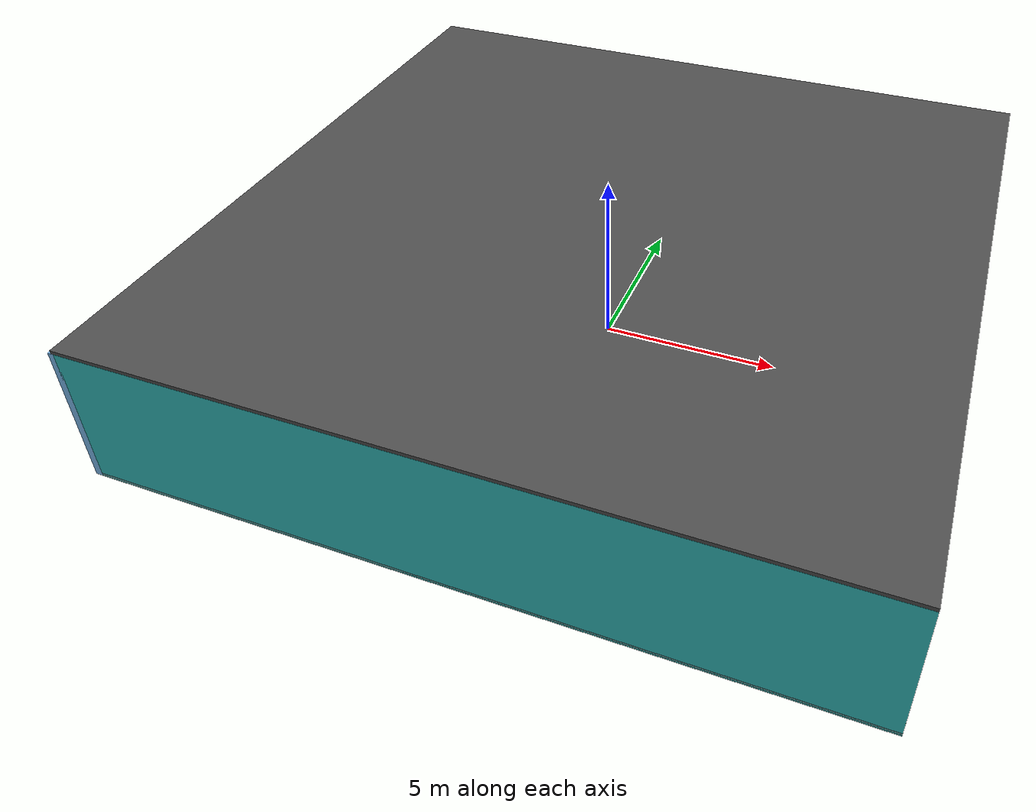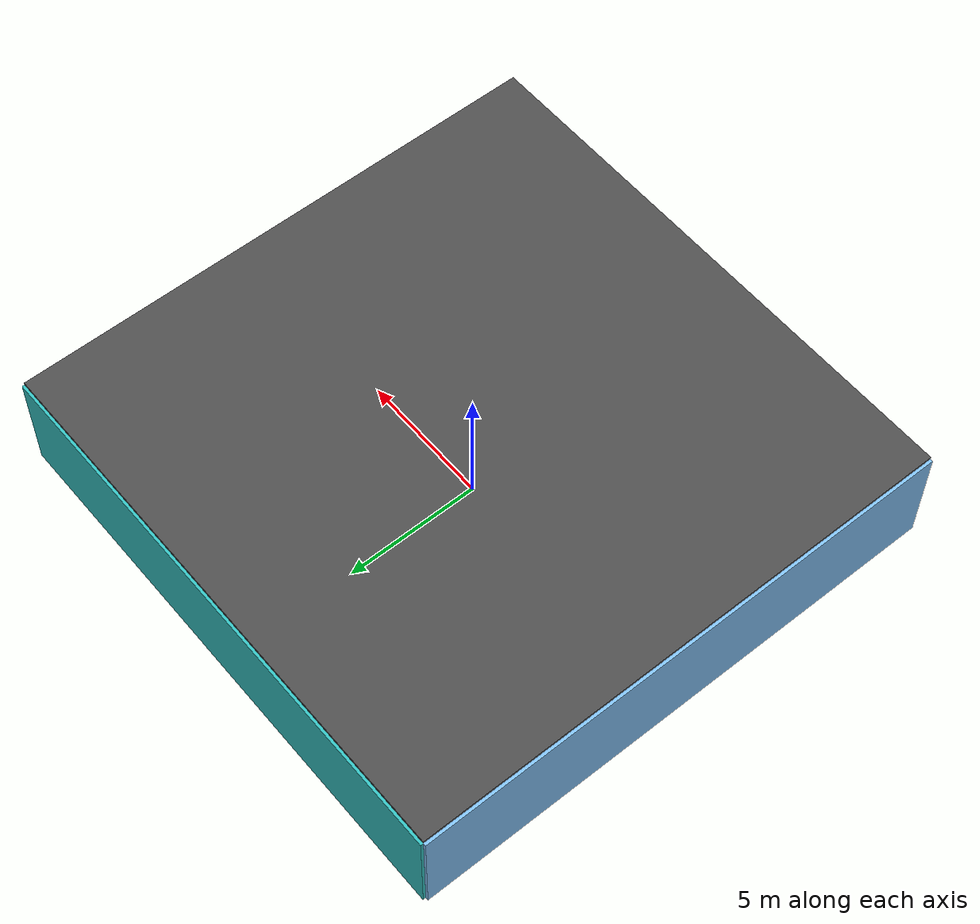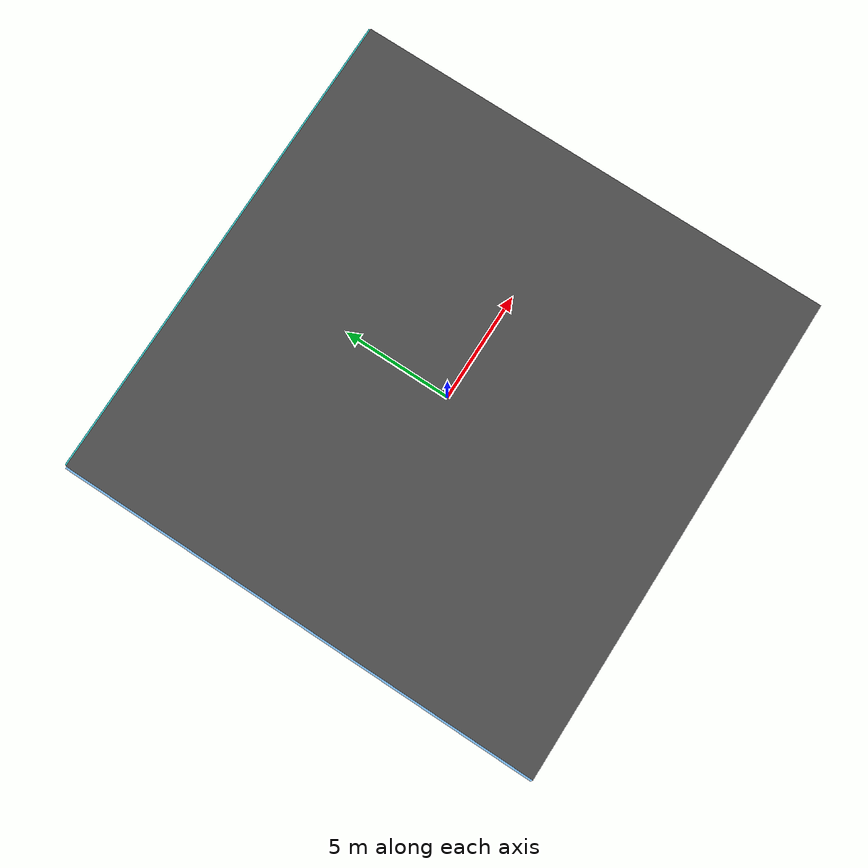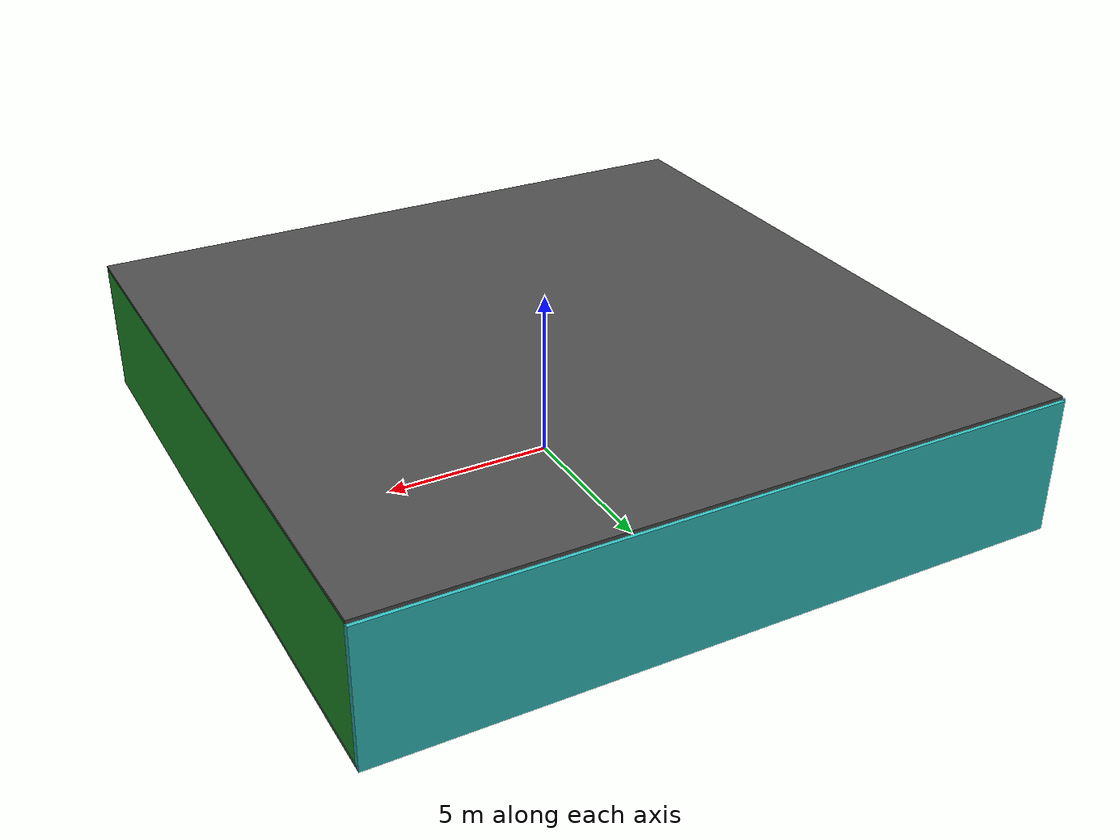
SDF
<sdf version="1.4">
 <world name="default">
  <physics type="ode">
   <max_step_size>0.001</max_step_size>
   <real_time_factor>1</real_time_factor>
   <real_time_update_rate>1000</real_time_update_rate>
   <gravity>0 0 -9.8</gravity>
  </physics>
  <scene><ambient>0.4 0.4 0.4 1</ambient><background>0.7 0.7 0.7 1</background><shadows>1</shadows></scene>
  <model name="Surrounding">
   <static>1</static>
   <link name="Ceiling">
    <collision name="Ceiling_Collision"><geometry><box><size>20 20 0.1</size></box></geometry></collision>
    <visual name="Ceiling_Visual">
     <geometry><box><size>20 20 0.1</size></box></geometry>
     <material>
      <script><uri>file://media/materials/scripts/gazebo.material</uri><name>Gazebo/DarkGrey</name></script>
     </material>
    </visual>
    <pose>0 0 4.05 0 0 0</pose>
   </link>
   <link name="Wall_South">
    <collision name="Wall_South_Collision">
     <geometry><box><size>20 0 4</size></box></geometry>
     <pose>0 0 2 0 -0 0</pose>
    </collision>
    <visual name="Wall_South_Visual">
     <pose>0 0 2 0 -0 0</pose>
     <geometry><box><size>20 0 4</size></box></geometry>
     <material>
      <script><uri>file://media/materials/scripts/gazebo.material</uri><name>Gazebo/TurquoiseGlow</name></script>
     </material>
    </visual>
    <velocity_decay><linear>0</linear><angular>0</angular></velocity_decay>
    <pose>0 -10 0 0 -0 0</pose>
   </link>
   <link name="Wall_East">
    <collision name="Wall_21_Collision">
     <geometry><box><size>20 0 4</size></box></geometry>
     <pose>0 0 2 0 -0 0</pose>
    </collision>
    <visual name="Wall_21_Visual">
     <pose>0 0 2 0 -0 0</pose>
     <geometry><box><size>20 0 4</size></box></geometry>
     <material>
      <script><uri>file://media/materials/scripts/gazebo.material</uri><name>Gazebo/GreenGlow</name></script>
     </material>
    </visual>
    <velocity_decay><linear>0</linear><angular>0</angular></velocity_decay>
    <pose>10 0 0 0 -0 1.5708</pose>
   </link>
   <link name="Wall_North">
    <collision name="Wall_22_Collision">
     <geometry><box><size>20 0.2 4</size></box></geometry>
     <pose>0 0 2 0 -0 0</pose>
    </collision>
    <visual name="Wall_22_Visual">
     <pose>0 0 2 0 -0 0</pose>
     <geometry><box><size>20 0.2 4</size></box></geometry>
     <material>
      <script>
       <uri>file://media/materials/scripts/gazebo.material</uri>
       <name>Gazebo/TurquoiseGlowOutline</name>
      </script>
     </material>
    </visual>
    <velocity_decay><linear>0</linear><angular>0</angular></velocity_decay>
    <pose>0 10 0 0 -0 0</pose>
   </link>
   <link name="Wall_West">
    <collision name="Wall_23_Collision">
     <geometry><box><size>20 0.2 4</size></box></geometry>
     <pose>0 0 2 0 -0 0</pose>
    </collision>
    <visual name="Wall_23_Visual">
     <pose>0 0 2 0 -0 0</pose>
     <geometry><box><size>20 0.2 4</size></box></geometry>
     <material>
      <script><uri>file://media/materials/scripts/gazebo.material</uri><name>Gazebo/SkyBlue</name></script>
     </material>
    </visual>
    <velocity_decay><linear>0</linear><angular>0</angular></velocity_decay>
    <pose>-10 0 0 0 0 -1.5708</pose>
   </link>
   <link name="Ground_link">
    <collision name="collision">
     <pose>0 0 .05 0 -0 0</pose>
     <geometry><box><size>20 20 0.1</size></box></geometry>
    </collision>
    <visual name="visual">
     <pose>0 0 .05 0 -0 0</pose>
     <geometry><box><size>20 20 0.1</size></box></geometry>
     <material>
      <script><uri>file://media/materials/scripts/gazebo.material</uri><name>Gazebo/GreyTransparent</name></script>
     </material>
    </visual>
   </link>
   <static>1</static>
  </model>
  <spherical_coordinates>
   <surface_model>EARTH_WGS84</surface_model>
   <latitude_deg>0</latitude_deg>
   <longitude_deg>0</longitude_deg>
   <elevation>0</elevation>
   <heading_deg>0</heading_deg>
  </spherical_coordinates>
  <light name="lightball_0" type="diffuse">
   <diffuse>0.8 0.8 0.8 1</diffuse>
   <specular>0.2 0.2 0.2 1</specular>
   <attenuation>
    <range>100</range>
    <constant>0.7</constant>
    <linear>0.01</linear>
    <quadratic>0.001</quadratic>
   </attenuation>
   <direction>-0.5 0.1 -0.9</direction>
   <pose>-4.73864721572 -5.41763107757 2.43543387561 0 0 0</pose>
  </light>
  <light name="lightball_1" type="diffuse">
   <diffuse>0.8 0.8 0.8 1</diffuse>
   <specular>0.2 0.2 0.2 1</specular>
   <attenuation>
    <range>100</range>
    <constant>0.7</constant>
    <linear>0.01</linear>
    <quadratic>0.001</quadratic>
   </attenuation>
   <direction>-0.5 0.1 -0.9</direction>
   <pose>0.239887969981 6.26508078369 2.70696778817 0 0 0</pose>
  </light>
  <light name="lightball_2" type="diffuse">
   <diffuse>0.8 0.8 0.8 1</diffuse>
   <specular>0.2 0.2 0.2 1</specular>
   <attenuation>
    <range>100</range>
    <constant>0.7</constant>
    <linear>0.01</linear>
    <quadratic>0.001</quadratic>
   </attenuation>
   <direction>-0.5 0.1 -0.9</direction>
   <pose>4.09155682529 6.14284221957 2.20595829642 0 0 0</pose>
  </light>
  <light name="lightball_3" type="diffuse">
   <diffuse>0.8 0.8 0.8 1</diffuse>
   <specular>0.2 0.2 0.2 1</specular>
   <attenuation>
    <range>100</range>
    <constant>0.7</constant>
    <linear>0.01</linear>
    <quadratic>0.001</quadratic>
   </attenuation>
   <direction>-0.5 0.1 -0.9</direction>
   <pose>-8.57330115269 -8.55856912495 1.42482753831 0 0 0</pose>
  </light>
  <light name="lightball_4" type="diffuse">
   <diffuse>0.8 0.8 0.8 1</diffuse>
   <specular>0.2 0.2 0.2 1</specular>
   <attenuation>
    <range>100</range>
    <constant>0.7</constant>
    <linear>0.01</linear>
    <quadratic>0.001</quadratic>
   </attenuation>
   <direction>-0.5 0.1 -0.9</direction>
   <pose>-3.5504330846 5.20867360881 2.68380203581 0 0 0</pose>
  </light>
  <light name="lightball_5" type="diffuse">
   <diffuse>0.8 0.8 0.8 1</diffuse>
   <specular>0.2 0.2 0.2 1</specular>
   <attenuation>
    <range>100</range>
    <constant>0.7</constant>
    <linear>0.01</linear>
    <quadratic>0.001</quadratic>
   </attenuation>
   <direction>-0.5 0.1 -0.9</direction>
   <pose>1.46259710909 0.419399686903 3.34401264581 0 0 0</pose>
  </light>
  <light name="lightball_6" type="diffuse">
   <diffuse>0.8 0.8 0.8 1</diffuse>
   <specular>0.2 0.2 0.2 1</specular>
   <attenuation>
    <range>100</range>
    <constant>0.7</constant>
    <linear>0.01</linear>
    <quadratic>0.001</quadratic>
   </attenuation>
   <direction>-0.5 0.1 -0.9</direction>
   <pose>0.172027054903 -2.09682208113 2.41331107954 0 0 0</pose>
  </light>
  <light name="lightball_7" type="diffuse">
   <diffuse>0.8 0.8 0.8 1</diffuse>
   <specular>0.2 0.2 0.2 1</specular>
   <attenuation>
    <range>100</range>
    <constant>0.7</constant>
    <linear>0.01</linear>
    <quadratic>0.001</quadratic>
   </attenuation>
   <direction>-0.5 0.1 -0.9</direction>
   <pose>-2.62879372128 9.99806137245 1.39699501779 0 0 0</pose>
  </light>
  <light name="lightball_8" type="diffuse">
   <diffuse>0.8 0.8 0.8 1</diffuse>
   <specular>0.2 0.2 0.2 1</specular>
   <attenuation>
    <range>100</range>
    <constant>0.7</constant>
    <linear>0.01</linear>
    <quadratic>0.001</quadratic>
   </attenuation>
   <direction>-0.5 0.1 -0.9</direction>
   <pose>8.15099615138 3.69318679336 3.34933946457 0 0 0</pose>
  </light>
  <light name="lightball_9" type="diffuse">
   <diffuse>0.8 0.8 0.8 1</diffuse>
   <specular>0.2 0.2 0.2 1</specular>
   <attenuation>
    <range>100</range>
    <constant>0.7</constant>
    <linear>0.01</linear>
    <quadratic>0.001</quadratic>
   </attenuation>
   <direction>-0.5 0.1 -0.9</direction>
   <pose>-5.29199507459 -4.92456366194 1.68571238625 0 0 0</pose>
  </light>
  <light name="lightball_10" type="diffuse">
   <diffuse>0.8 0.8 0.8 1</diffuse>
   <specular>0.2 0.2 0.2 1</specular>
   <attenuation>
    <range>100</range>
    <constant>0.7</constant>
    <linear>0.01</linear>
    <quadratic>0.001</quadratic>
   </attenuation>
   <direction>-0.5 0.1 -0.9</direction>
   <pose>9.5046152693 2.86178867981 3.32201946591 0 0 0</pose>
  </light>
  <include><uri>model://table</uri><pose>-8.37097510043 5.57050943842 0 0 0 0.139137468833</pose></include>
  <include><uri>model://cabinet</uri><pose>-7.69692369118 7.77151209861 0 0 0 2.64502468847</pose></include>
  <include>
   <uri>model://construction_cone</uri>
   <pose>-1.24594843104 5.27833407688 0 0 0 2.7113410184</pose>
  </include>
  <include><uri>model://cabinet</uri><pose>0.458517982023 -0.541413867324 0 0 0 3.05494503095</pose></include>
  <include><uri>model://table</uri><pose>5.65715340902 5.34367817691 0 0 0 3.10235853016</pose></include>
 </world>
</sdf>

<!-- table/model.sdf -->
<sdf version="1.5">
  <model name="table">
    <static>true</static>
    <link name="link">
      <collision name="surface">
        <pose>0 0 1.0 0 0 0</pose>
        <geometry>
          <box>
            <size>1.5 0.8 0.03</size>
          </box>
        </geometry>
        <surface>
          <friction>
            <ode>
              <mu>0.6</mu>
              <mu2>0.6</mu2>
            </ode>
          </friction>
        </surface>
      </collision>
      <visual name="visual1">
        <pose>0 0 1.0 0 0 0</pose>
        <geometry>
          <box>
            <size>1.5 0.8 0.03</size>
          </box>
        </geometry>
        <material>
          <script>
            <uri>model://media/materials/scripts/gazebo.material</uri>
            <name>Gazebo/Wood</name>
          </script>
        </material>
      </visual>
      <collision name="front_left_leg">
        <pose>0.68 0.38 0.5 0 0 0</pose>
        <geometry>
          <cylinder>
            <radius>0.02</radius>
            <length>1.0</length>
          </cylinder>
        </geometry>
      </collision>
      <visual name="front_left_leg">
        <pose>0.68 0.38 0.5 0 0 0</pose>
        <geometry>
          <cylinder>
            <radius>0.02</radius>
            <length>1.0</length>
          </cylinder>
        </geometry>
        <material>
          <script>
            <uri>model://media/materials/scripts/gazebo.material</uri>
            <name>Gazebo/Grey</name>
          </script>
        </material>
      </visual>
      <collision name="front_right_leg">
        <pose>0.68 -0.38 0.5 0 0 0</pose>
        <geometry>
          <cylinder>
            <radius>0.02</radius>
            <length>1.0</length>
          </cylinder>
        </geometry>
      </collision>
      <visual name="front_right_leg">
        <pose>0.68 -0.38 0.5 0 0 0</pose>
        <geometry>
          <cylinder>
            <radius>0.02</radius>
            <length>1.0</length>
          </cylinder>
        </geometry>
        <material>
          <script>
            <uri>model://media/materials/scripts/gazebo.material</uri>
            <name>Gazebo/Grey</name>
          </script>
        </material>
      </visual>
      <collision name="back_right_leg">
        <pose>-0.68 -0.38 0.5 0 0 0</pose>
        <geometry>
          <cylinder>
            <radius>0.02</radius>
            <length>1.0</length>
          </cylinder>
        </geometry>
      </collision>
      <visual name="back_right_leg">
        <pose>-0.68 -0.38 0.5 0 0 0</pose>
        <geometry>
          <cylinder>
            <radius>0.02</radius>
            <length>1.0</length>
          </cylinder>
        </geometry>
        <material>
          <script>
            <uri>model://media/materials/scripts/gazebo.material</uri>
            <name>Gazebo/Grey</name>
          </script>
        </material>
      </visual>
      <collision name="back_left_leg">
        <pose>-0.68 0.38 0.5 0 0 0</pose>
        <geometry>
          <cylinder>
            <radius>0.02</radius>
            <length>1.0</length>
          </cylinder>
        </geometry>
      </collision>
      <visual name="back_left_leg">
        <pose>-0.68 0.38 0.5 0 0 0</pose>
        <geometry>
          <cylinder>
            <radius>0.02</radius>
            <length>1.0</length>
          </cylinder>
        </geometry>
        <material>
          <script>
            <uri>model://media/materials/scripts/gazebo.material</uri>
            <name>Gazebo/Grey</name>
          </script>
        </material>
      </visual>
    </link>
  </model>
</sdf>

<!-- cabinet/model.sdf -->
<sdf version="1.5">
  <model name="cabinet">
    <static>true</static>
    <link name="cabinet_bottom_plate">
      <inertial>
        <pose>0 0 -1 0 0 0</pose>
        <inertia>
          <ixx>2.050000</ixx>
          <ixy>0</ixy>
          <ixz>0</ixz>
          <iyy>2.050000</iyy>
          <iyz>0</iyz>
          <izz>2.050000</izz>
        </inertia>
        <mass>25.000000</mass>
      </inertial>
      <collision name="cabinet_bottom_plate_geom">
        <pose>0 0 0.010000 0 0 0</pose>
        <geometry>
          <box>
            <size>0.450000 0.450000 0.020000</size>
          </box>
        </geometry>
      </collision>
      <visual name="cabinet_bottom_plate_geom_visual">
        <pose>0 0 0.010000 0 0 0</pose>
        <geometry>
          <box>
            <size>0.450000 0.450000 0.020000</size>
          </box>
        </geometry>
        <material>
          <script>
            <uri>model://media/materials/scripts/gazebo.material</uri>
            <name>Gazebo/Wood</name>
          </script>
        </material>
      </visual>
      <collision name="cabinet_bottom_plate_geom_cabinet_back_plate">
        <pose>0.235000 0 0.510000 0 0 0</pose>
        <geometry>
          <box>
            <size>0.020000 0.450000 1.020000</size>
          </box>
        </geometry>
      </collision>
      <visual name="cabinet_bottom_plate_geom_cabinet_back_plate_visual">
        <pose>0.235000 0 0.510000 0 0 0</pose>
        <geometry>
          <box>
            <size>0.020000 0.450000 1.020000</size>
          </box>
        </geometry>
        <material>
          <script>
            <uri>model://media/materials/scripts/gazebo.material</uri>
            <name>Gazebo/Wood</name>
          </script>
        </material>
      </visual>
      <collision name="cabinet_bottom_plate_geom_cabinet_left_plate">
        <pose>0 0.235000 0.510000 0 0 0</pose>
        <geometry>
          <box>
            <size>0.450000 0.020000 1.020000</size>
          </box>
        </geometry>
      </collision>
      <visual name="cabinet_bottom_plate_geom_cabinet_left_plate_visual">
        <pose>0 0.235000 0.510000 0 0 0</pose>
        <geometry>
          <box>
            <size>0.450000 0.020000 1.020000</size>
          </box>
        </geometry>
        <material>
          <script>
            <uri>model://media/materials/scripts/gazebo.material</uri>
            <name>Gazebo/Wood</name>
          </script>
        </material>
      </visual>
      <collision name="cabinet_bottom_plate_geom_cabinet_middle_plate">
        <pose>0 0 0.510000 0 0 0</pose>
        <geometry>
          <box>
            <size>0.450000 0.450000 0.020000</size>
          </box>
        </geometry>
      </collision>
      <visual name="cabinet_bottom_plate_geom_cabinet_middle_plate_visual">
        <pose>0 0 0.510000 0 0 0</pose>
        <geometry>
          <box>
            <size>0.450000 0.450000 0.020000</size>
          </box>
        </geometry>
        <material>
          <script>
            <uri>model://media/materials/scripts/gazebo.material</uri>
            <name>Gazebo/Wood</name>
          </script>
        </material>
      </visual>
      <collision name="cabinet_bottom_plate_geom_cabinet_right_plate">
        <pose>0 -0.235000 0.510000 0 0 0</pose>
        <geometry>
          <box>
            <size>0.450000 0.020000 1.020000</size>
          </box>
        </geometry>
      </collision>
      <visual name="cabinet_bottom_plate_geom_cabinet_right_plate_visual">
        <pose>0 -0.235000 0.510000 0 0 0</pose>
        <geometry>
          <box>
            <size>0.450000 0.020000 1.020000</size>
          </box>
        </geometry>
        <material>
          <script>
            <uri>model://media/materials/scripts/gazebo.material</uri>
            <name>Gazebo/Wood</name>
          </script>
        </material>
      </visual>
      <collision name="cabinet_bottom_plate_geom_cabinet_top_plate">
        <pose>0 0 1.010000 0 0 0</pose>
        <geometry>
          <box>
            <size>0.450000 0.450000 0.020000</size>
          </box>
        </geometry>
      </collision>
      <visual name="cabinet_bottom_plate_geom_cabinet_top_plate_visual">
        <pose>0 0 1.010000 0 0 0</pose>
        <geometry>
          <box>
            <size>0.450000 0.450000 0.020000</size>
          </box>
        </geometry>
        <material>
          <script>
            <uri>model://media/materials/scripts/gazebo.material</uri>
            <name>Gazebo/Wood</name>
          </script>
        </material>
      </visual>
    </link>
  </model>
</sdf>

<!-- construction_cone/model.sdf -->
<sdf version="1.5">
  <model name="Construction Cone">
    <link name="link">
      <collision name="collision">
        <geometry>
          <mesh>
            <scale>10 10 10</scale>
            <uri>file://isr-testbed/construction_cone/meshes/construction_cone.dae</uri>
          </mesh>
        </geometry>
      </collision>
      <visual name="visual">
        <geometry>
          <mesh>
            <scale>10 10 10</scale>
            <uri>file://isr-testbed/construction_cone/meshes/construction_cone.dae</uri>
          </mesh>
        </geometry>
      </visual>
    </link>
  </model>
</sdf>
